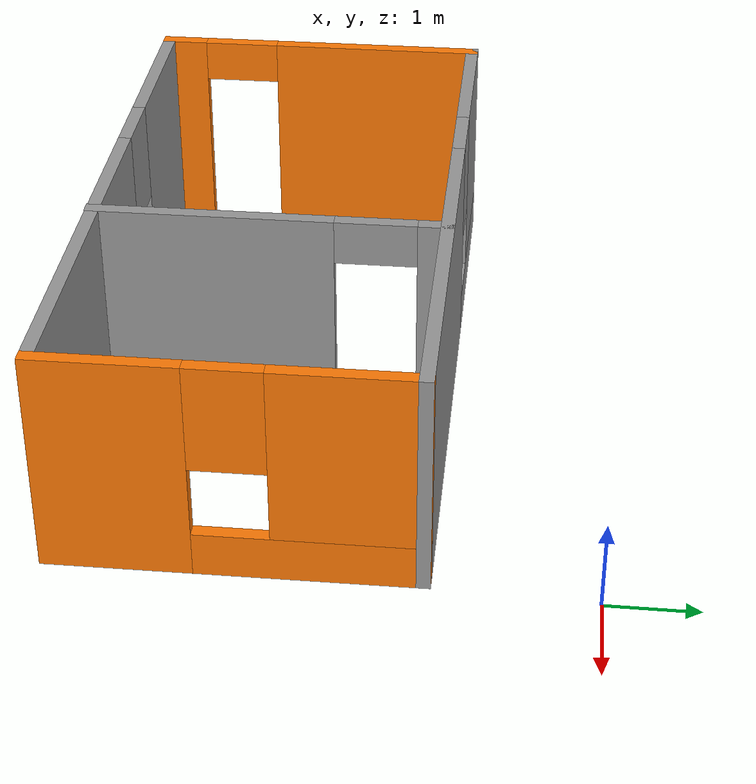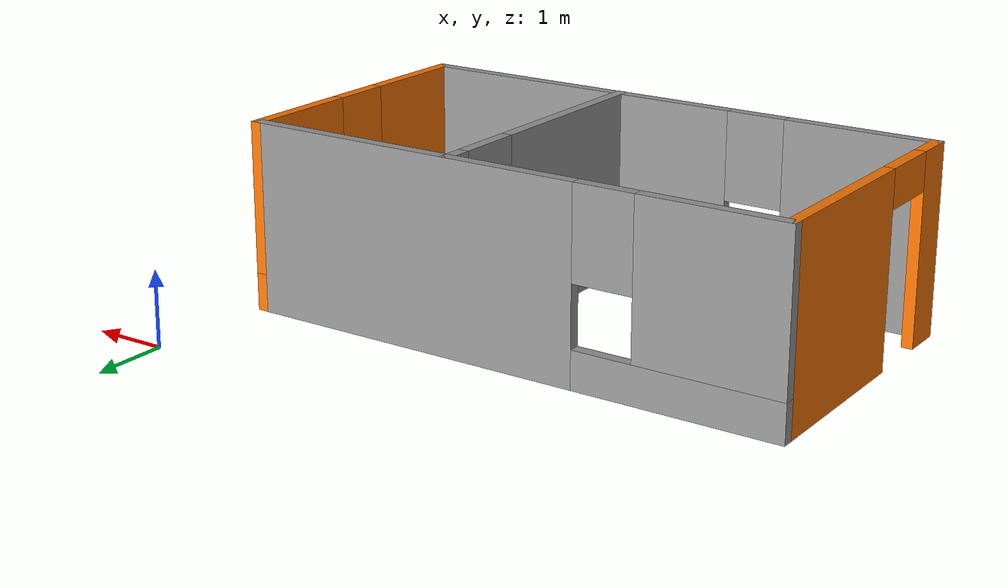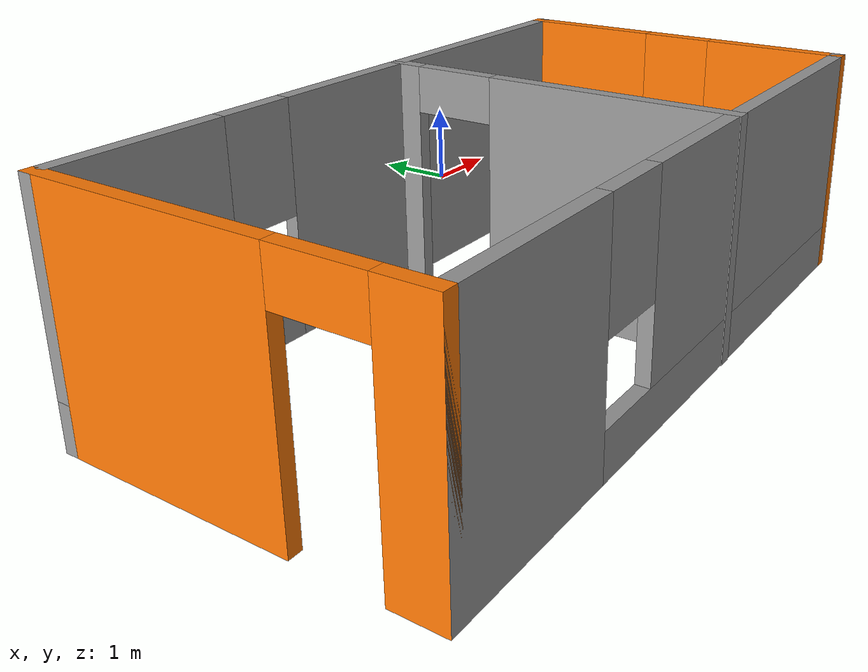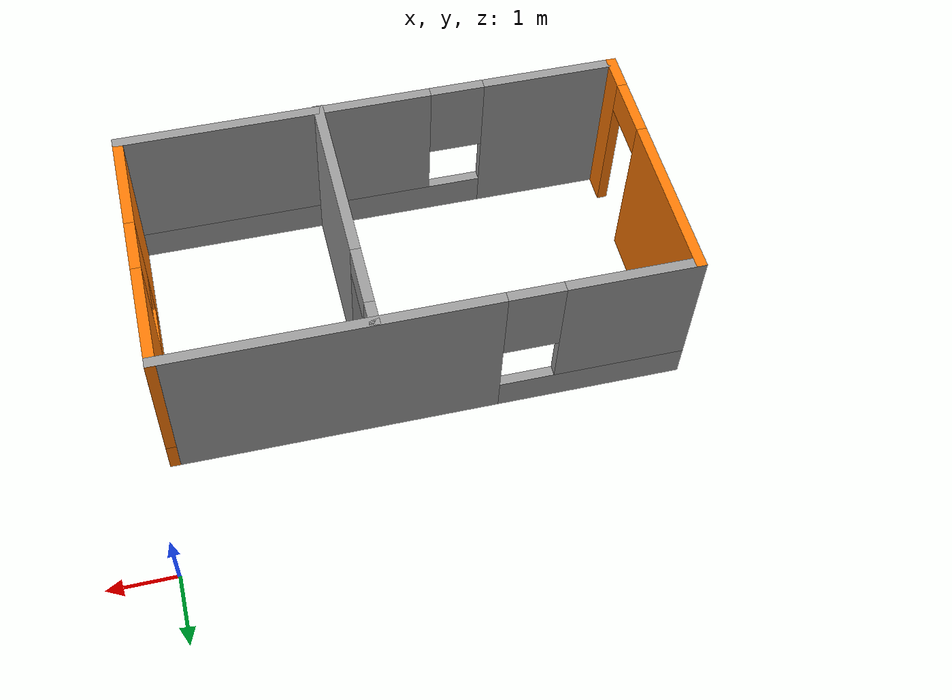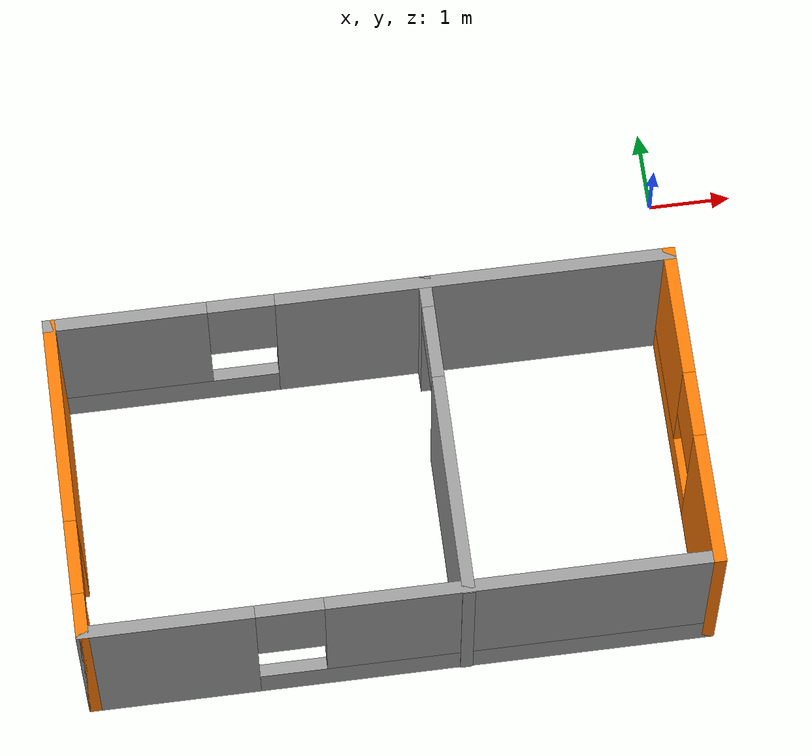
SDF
<?xml version='1.0'?>
<sdf version='1.7'>
  <model name='my_world.world'>
    <pose>-3.7925 -2.8575 0 0 -0 0</pose>
    <link name='Wall_0'>
      <pose>-3.7175 -0.8475 0 0 -0 -1.5708</pose>
      <visual name='Wall_0_Visual_0'>
        <pose>-0.7275 0 1.25 0 -0 0</pose>
        <geometry>
          <box>
            <size>2.545 0.15 2.5</size>
          </box>
        </geometry>
        <material>
          <script>
            <uri>file://media/materials/scripts/gazebo.material</uri>
            <name>Gazebo/Grey</name>
          </script>
          <ambient>0.996078 0.47451 0.0196078 1</ambient>
        </material>
        <meta>
          <layer>0</layer>
        </meta>
      </visual>
      <collision name='Wall_0_Collision_0'>
        <geometry>
          <box>
            <size>2.545 0.15 2.5</size>
          </box>
        </geometry>
        <pose>-0.7275 0 1.25 0 -0 0</pose>
      </collision>
      <visual name='Wall_0_Visual_1'>
        <pose>1.7225 0 1.25 0 -0 0</pose>
        <geometry>
          <box>
            <size>0.555 0.15 2.5</size>
          </box>
        </geometry>
        <material>
          <script>
            <uri>file://media/materials/scripts/gazebo.material</uri>
            <name>Gazebo/Grey</name>
          </script>
          <ambient>0.996078 0.47451 0.0196078 1</ambient>
        </material>
        <meta>
          <layer>0</layer>
        </meta>
      </visual>
      <collision name='Wall_0_Collision_1'>
        <geometry>
          <box>
            <size>0.555 0.15 2.5</size>
          </box>
        </geometry>
        <pose>1.7225 0 1.25 0 -0 0</pose>
      </collision>
      <visual name='Wall_0_Visual_2'>
        <pose>0.995 0 2.25 0 -0 0</pose>
        <geometry>
          <box>
            <size>0.9 0.15 0.5</size>
          </box>
        </geometry>
        <material>
          <script>
            <uri>file://media/materials/scripts/gazebo.material</uri>
            <name>Gazebo/Grey</name>
          </script>
          <ambient>0.996078 0.47451 0.0196078 1</ambient>
        </material>
        <meta>
          <layer>0</layer>
        </meta>
      </visual>
      <collision name='Wall_0_Collision_2'>
        <geometry>
          <box>
            <size>0.9 0.15 0.5</size>
          </box>
        </geometry>
        <pose>0.995 0 2.25 0 -0 0</pose>
      </collision>
    </link>
    <link name='Wall_1'>
      <pose>-0.0425 -2.7725 0 0 -0 0</pose>
      <visual name='Wall_1_Visual_0'>
        <pose>-2.7225 0 1.25 0 -0 0</pose>
        <geometry>
          <box>
            <size>2.055 0.15 2.5</size>
          </box>
        </geometry>
        <material>
          <script>
            <uri>file://media/materials/scripts/gazebo.material</uri>
            <name>Gazebo/Grey</name>
          </script>
          <ambient>1 1 1 1</ambient>
        </material>
        <meta>
          <layer>0</layer>
        </meta>
      </visual>
      <collision name='Wall_1_Collision_0'>
        <geometry>
          <box>
            <size>2.055 0.15 2.5</size>
          </box>
        </geometry>
        <pose>-2.7225 0 1.25 0 -0 0</pose>
      </collision>
      <visual name='Wall_1_Visual_1'>
        <pose>1.0275 0 0.25 0 -0 0</pose>
        <geometry>
          <box>
            <size>5.445 0.15 0.5</size>
          </box>
        </geometry>
        <material>
          <script>
            <uri>file://media/materials/scripts/gazebo.material</uri>
            <name>Gazebo/Grey</name>
          </script>
          <ambient>1 1 1 1</ambient>
        </material>
        <meta>
          <layer>0</layer>
        </meta>
      </visual>
      <collision name='Wall_1_Collision_1'>
        <geometry>
          <box>
            <size>5.445 0.15 0.5</size>
          </box>
        </geometry>
        <pose>1.0275 0 0.25 0 -0 0</pose>
      </collision>
      <visual name='Wall_1_Visual_2'>
        <pose>1.4275 0 1.5 0 -0 0</pose>
        <geometry>
          <box>
            <size>4.645 0.15 2</size>
          </box>
        </geometry>
        <material>
          <script>
            <uri>file://media/materials/scripts/gazebo.material</uri>
            <name>Gazebo/Grey</name>
          </script>
          <ambient>1 1 1 1</ambient>
        </material>
        <meta>
          <layer>0</layer>
        </meta>
      </visual>
      <collision name='Wall_1_Collision_2'>
        <geometry>
          <box>
            <size>4.645 0.15 2</size>
          </box>
        </geometry>
        <pose>1.4275 0 1.5 0 -0 0</pose>
      </collision>
      <visual name='Wall_1_Visual_3'>
        <pose>-1.295 0 1.9 0 -0 0</pose>
        <geometry>
          <box>
            <size>0.8 0.15 1.2</size>
          </box>
        </geometry>
        <material>
          <script>
            <uri>file://media/materials/scripts/gazebo.material</uri>
            <name>Gazebo/Grey</name>
          </script>
          <ambient>1 1 1 1</ambient>
        </material>
        <meta>
          <layer>0</layer>
        </meta>
      </visual>
      <collision name='Wall_1_Collision_3'>
        <geometry>
          <box>
            <size>0.8 0.15 1.2</size>
          </box>
        </geometry>
        <pose>-1.295 0 1.9 0 -0 0</pose>
      </collision>
    </link>
    <link name='Wall_2'>
      <pose>3.6325 -0.8475 0 0 -0 1.5708</pose>
      <visual name='Wall_2_Visual_0'>
        <pose>-1.2075 0 1.25 0 -0 0</pose>
        <geometry>
          <box>
            <size>1.585 0.15 2.5</size>
          </box>
        </geometry>
        <material>
          <script>
            <uri>file://media/materials/scripts/gazebo.material</uri>
            <name>Gazebo/Grey</name>
          </script>
          <ambient>0.996078 0.47451 0.0196078 1</ambient>
        </material>
        <meta>
          <layer>0</layer>
        </meta>
      </visual>
      <collision name='Wall_2_Collision_0'>
        <geometry>
          <box>
            <size>1.585 0.15 2.5</size>
          </box>
        </geometry>
        <pose>-1.2075 0 1.25 0 -0 0</pose>
      </collision>
      <visual name='Wall_2_Visual_1'>
        <pose>0.7925 0 0.25 0 -0 0</pose>
        <geometry>
          <box>
            <size>2.415 0.15 0.5</size>
          </box>
        </geometry>
        <material>
          <script>
            <uri>file://media/materials/scripts/gazebo.material</uri>
            <name>Gazebo/Grey</name>
          </script>
          <ambient>0.996078 0.47451 0.0196078 1</ambient>
        </material>
        <meta>
          <layer>0</layer>
        </meta>
      </visual>
      <collision name='Wall_2_Collision_1'>
        <geometry>
          <box>
            <size>2.415 0.15 0.5</size>
          </box>
        </geometry>
        <pose>0.7925 0 0.25 0 -0 0</pose>
      </collision>
      <visual name='Wall_2_Visual_2'>
        <pose>1.1925 0 1.5 0 -0 0</pose>
        <geometry>
          <box>
            <size>1.615 0.15 2</size>
          </box>
        </geometry>
        <material>
          <script>
            <uri>file://media/materials/scripts/gazebo.material</uri>
            <name>Gazebo/Grey</name>
          </script>
          <ambient>0.996078 0.47451 0.0196078 1</ambient>
        </material>
        <meta>
          <layer>0</layer>
        </meta>
      </visual>
      <collision name='Wall_2_Collision_2'>
        <geometry>
          <box>
            <size>1.615 0.15 2</size>
          </box>
        </geometry>
        <pose>1.1925 0 1.5 0 -0 0</pose>
      </collision>
      <visual name='Wall_2_Visual_3'>
        <pose>-0.015 0 1.9 0 -0 0</pose>
        <geometry>
          <box>
            <size>0.8 0.15 1.2</size>
          </box>
        </geometry>
        <material>
          <script>
            <uri>file://media/materials/scripts/gazebo.material</uri>
            <name>Gazebo/Grey</name>
          </script>
          <ambient>0.996078 0.47451 0.0196078 1</ambient>
        </material>
        <meta>
          <layer>0</layer>
        </meta>
      </visual>
      <collision name='Wall_2_Collision_3'>
        <geometry>
          <box>
            <size>0.8 0.15 1.2</size>
          </box>
        </geometry>
        <pose>-0.015 0 1.9 0 -0 0</pose>
      </collision>
    </link>
    <link name='Wall_3'>
      <pose>-0.0425 1.0775 0 0 -0 3.14159</pose>
      <visual name='Wall_3_Visual_0'>
        <pose>-1.3675 0 1.25 0 -0 0</pose>
        <geometry>
          <box>
            <size>4.765 0.15 2.5</size>
          </box>
        </geometry>
        <material>
          <script>
            <uri>file://media/materials/scripts/gazebo.material</uri>
            <name>Gazebo/Grey</name>
          </script>
          <ambient>1 1 1 1</ambient>
        </material>
        <meta>
          <layer>0</layer>
        </meta>
      </visual>
      <collision name='Wall_3_Collision_0'>
        <geometry>
          <box>
            <size>4.765 0.15 2.5</size>
          </box>
        </geometry>
        <pose>-1.3675 0 1.25 0 -0 0</pose>
      </collision>
      <visual name='Wall_3_Visual_1'>
        <pose>2.3825 0 0.25 0 -0 0</pose>
        <geometry>
          <box>
            <size>2.735 0.15 0.5</size>
          </box>
        </geometry>
        <material>
          <script>
            <uri>file://media/materials/scripts/gazebo.material</uri>
            <name>Gazebo/Grey</name>
          </script>
          <ambient>1 1 1 1</ambient>
        </material>
        <meta>
          <layer>0</layer>
        </meta>
      </visual>
      <collision name='Wall_3_Collision_1'>
        <geometry>
          <box>
            <size>2.735 0.15 0.5</size>
          </box>
        </geometry>
        <pose>2.3825 0 0.25 0 -0 0</pose>
      </collision>
      <visual name='Wall_3_Visual_2'>
        <pose>2.7825 0 1.5 0 -0 0</pose>
        <geometry>
          <box>
            <size>1.935 0.15 2</size>
          </box>
        </geometry>
        <material>
          <script>
            <uri>file://media/materials/scripts/gazebo.material</uri>
            <name>Gazebo/Grey</name>
          </script>
          <ambient>1 1 1 1</ambient>
        </material>
        <meta>
          <layer>0</layer>
        </meta>
      </visual>
      <collision name='Wall_3_Collision_2'>
        <geometry>
          <box>
            <size>1.935 0.15 2</size>
          </box>
        </geometry>
        <pose>2.7825 0 1.5 0 -0 0</pose>
      </collision>
      <visual name='Wall_3_Visual_3'>
        <pose>1.415 0 1.9 0 -0 0</pose>
        <geometry>
          <box>
            <size>0.8 0.15 1.2</size>
          </box>
        </geometry>
        <material>
          <script>
            <uri>file://media/materials/scripts/gazebo.material</uri>
            <name>Gazebo/Grey</name>
          </script>
          <ambient>1 1 1 1</ambient>
        </material>
        <meta>
          <layer>0</layer>
        </meta>
      </visual>
      <collision name='Wall_3_Collision_3'>
        <geometry>
          <box>
            <size>0.8 0.15 1.2</size>
          </box>
        </geometry>
        <pose>1.415 0 1.9 0 -0 0</pose>
      </collision>
    </link>
    <link name='Wall_5'>
      <pose>0.7225 -0.8575 0 0 -0 1.5708</pose>
      <visual name='Wall_5_Visual_0'>
        <pose>-0.6425 0 1.25 0 -0 0</pose>
        <geometry>
          <box>
            <size>2.715 0.15 2.5</size>
          </box>
        </geometry>
        <material>
          <script>
            <uri>file://media/materials/scripts/gazebo.material</uri>
            <name>Gazebo/Grey</name>
          </script>
          <ambient>1 1 1 1</ambient>
        </material>
        <meta>
          <layer>0</layer>
        </meta>
      </visual>
      <collision name='Wall_5_Collision_0'>
        <geometry>
          <box>
            <size>2.715 0.15 2.5</size>
          </box>
        </geometry>
        <pose>-0.6425 0 1.25 0 -0 0</pose>
      </collision>
      <visual name='Wall_5_Visual_1'>
        <pose>1.8075 0 1.25 0 -0 0</pose>
        <geometry>
          <box>
            <size>0.385 0.15 2.5</size>
          </box>
        </geometry>
        <material>
          <script>
            <uri>file://media/materials/scripts/gazebo.material</uri>
            <name>Gazebo/Grey</name>
          </script>
          <ambient>1 1 1 1</ambient>
        </material>
        <meta>
          <layer>0</layer>
        </meta>
      </visual>
      <collision name='Wall_5_Collision_1'>
        <geometry>
          <box>
            <size>0.385 0.15 2.5</size>
          </box>
        </geometry>
        <pose>1.8075 0 1.25 0 -0 0</pose>
      </collision>
      <visual name='Wall_5_Visual_2'>
        <pose>1.165 0 2.25 0 -0 0</pose>
        <geometry>
          <box>
            <size>0.9 0.15 0.5</size>
          </box>
        </geometry>
        <material>
          <script>
            <uri>file://media/materials/scripts/gazebo.material</uri>
            <name>Gazebo/Grey</name>
          </script>
          <ambient>1 1 1 1</ambient>
        </material>
        <meta>
          <layer>0</layer>
        </meta>
      </visual>
      <collision name='Wall_5_Collision_2'>
        <geometry>
          <box>
            <size>0.9 0.15 0.5</size>
          </box>
        </geometry>
        <pose>1.165 0 2.25 0 -0 0</pose>
      </collision>
    </link>
    <static>1</static>
  </model>
</sdf>
